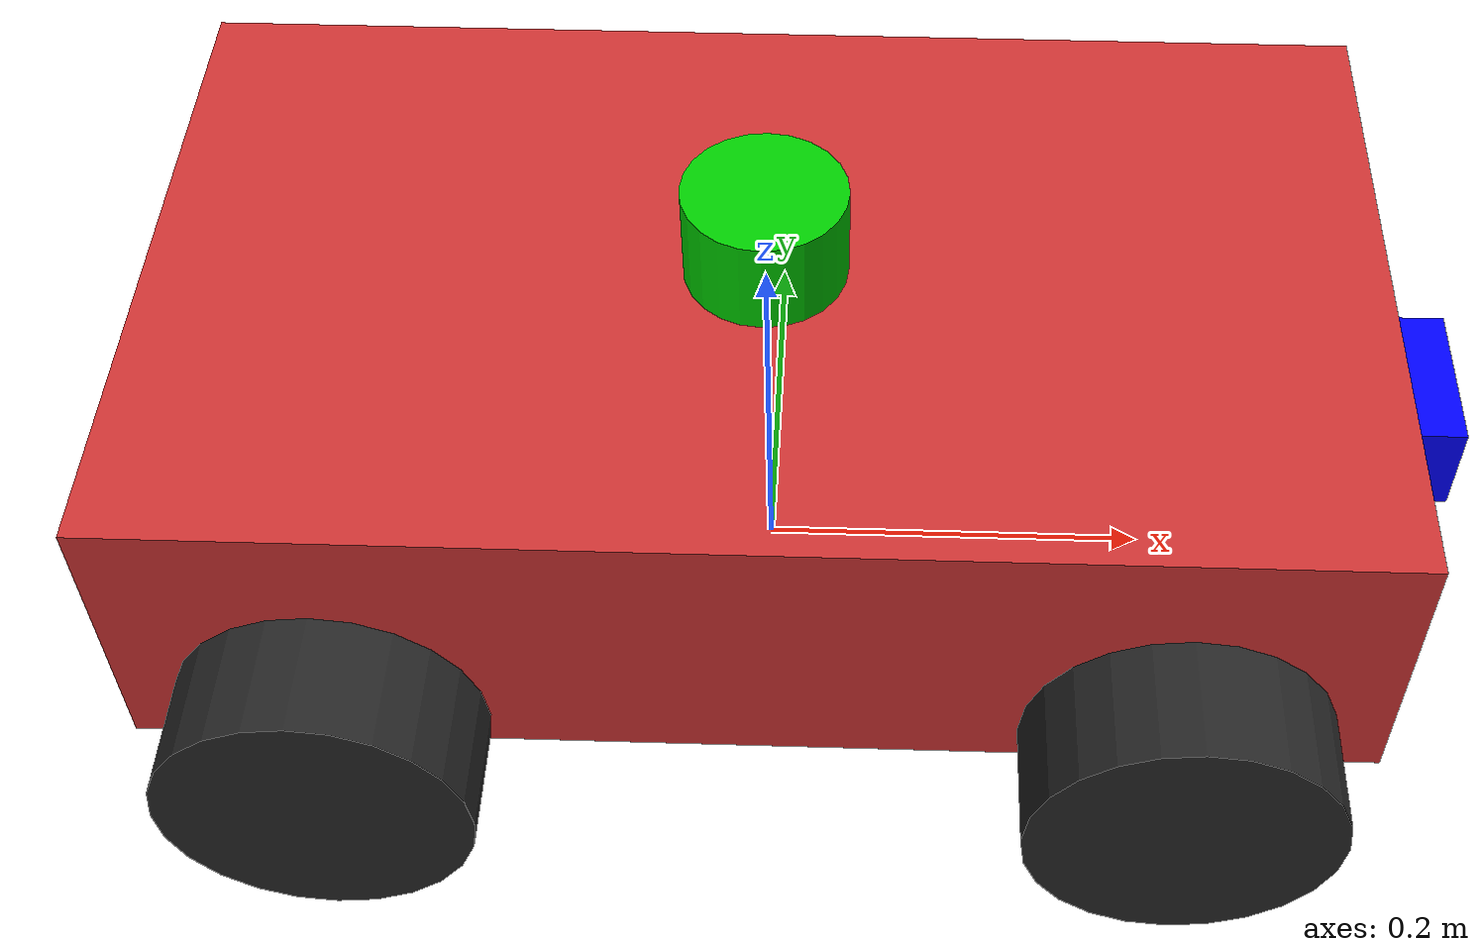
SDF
<?xml version="1.0" ?>
<sdf version="1.6">
  <model name="camera_robot">
    <!-- ==================== 底盘 ==================== -->
    <link name="base_link">
      <pose>0 0 0.13 0 0 0</pose>

      <inertial>
        <mass>15.0</mass>
        <inertia>
          <ixx>0.15</ixx><ixy>0</ixy><ixz>0</ixz>
          <iyy>0.20</iyy><iyz>0</iyz>
          <izz>0.25</izz>
        </inertia>
      </inertial>

      <collision name="collision">
        <geometry>
          <box><size>0.6 0.35 0.15</size></box>
        </geometry>
      </collision>

      <visual name="visual">
        <geometry>
          <box><size>0.6 0.35 0.15</size></box>
        </geometry>
        <material>
          <ambient>0.8 0.2 0.2 1</ambient>
          <diffuse>0.8 0.2 0.2 1</diffuse>
          <specular>0.1 0.1 0.1 1</specular>
        </material>
      </visual>
    </link>

    <!-- ==================== 四个车轮 ==================== -->

    <!-- 前左轮 (FL) -->
    <link name="front_left_wheel">
      <pose>0.2 0.205 0.075 1.5708 0 0</pose>
      <inertial>
        <mass>1.5</mass>
        <inertia>
          <ixx>0.012</ixx><ixy>0</ixy><ixz>0</ixz>
          <iyy>0.012</iyy><iyz>0</iyz>
          <izz>0.02</izz>
        </inertia>
      </inertial>
      <collision name="collision">
        <geometry>
          <cylinder><radius>0.075</radius><length>0.06</length></cylinder>
        </geometry>
        <surface>
          <friction>
            <ode><mu>1.0</mu><mu2>1.0</mu2></ode>
          </friction>
        </surface>
      </collision>
      <visual name="visual">
        <geometry>
          <cylinder><radius>0.075</radius><length>0.06</length></cylinder>
        </geometry>
        <material>
          <ambient>0.1 0.1 0.1 1</ambient>
          <diffuse>0.15 0.15 0.15 1</diffuse>
          <specular>0.5 0.5 0.5 1</specular>
        </material>
      </visual>
    </link>

    <!-- 前右轮 (FR) -->
    <link name="front_right_wheel">
      <pose>0.2 -0.205 0.075 1.5708 0 0</pose>
      <inertial>
        <mass>1.5</mass>
        <inertia>
          <ixx>0.012</ixx><ixy>0</ixy><ixz>0</ixz>
          <iyy>0.012</iyy><iyz>0</iyz>
          <izz>0.02</izz>
        </inertia>
      </inertial>
      <collision name="collision">
        <geometry>
          <cylinder><radius>0.075</radius><length>0.06</length></cylinder>
        </geometry>
        <surface>
          <friction>
            <ode><mu>1.0</mu><mu2>1.0</mu2></ode>
          </friction>
        </surface>
      </collision>
      <visual name="visual">
        <geometry>
          <cylinder><radius>0.075</radius><length>0.06</length></cylinder>
        </geometry>
        <material>
          <ambient>0.1 0.1 0.1 1</ambient>
          <diffuse>0.15 0.15 0.15 1</diffuse>
          <specular>0.5 0.5 0.5 1</specular>
        </material>
      </visual>
    </link>

    <!-- 后左轮 (RL) -->
    <link name="rear_left_wheel">
      <pose>-0.2 0.205 0.075 1.5708 0 0</pose>
      <inertial>
        <mass>1.5</mass>
        <inertia>
          <ixx>0.012</ixx><ixy>0</ixy><ixz>0</ixz>
          <iyy>0.012</iyy><iyz>0</iyz>
          <izz>0.02</izz>
        </inertia>
      </inertial>
      <collision name="collision">
        <geometry>
          <cylinder><radius>0.075</radius><length>0.06</length></cylinder>
        </geometry>
        <surface>
          <friction>
            <ode><mu>1.0</mu><mu2>1.0</mu2></ode>
          </friction>
        </surface>
      </collision>
      <visual name="visual">
        <geometry>
          <cylinder><radius>0.075</radius><length>0.06</length></cylinder>
        </geometry>
        <material>
          <ambient>0.1 0.1 0.1 1</ambient>
          <diffuse>0.15 0.15 0.15 1</diffuse>
          <specular>0.5 0.5 0.5 1</specular>
        </material>
      </visual>
    </link>

    <!-- 后右轮 (RR) -->
    <link name="rear_right_wheel">
      <pose>-0.2 -0.205 0.075 1.5708 0 0</pose>
      <inertial>
        <mass>1.5</mass>
        <inertia>
          <ixx>0.012</ixx><ixy>0</ixy><ixz>0</ixz>
          <iyy>0.012</iyy><iyz>0</iyz>
          <izz>0.02</izz>
        </inertia>
      </inertial>
      <collision name="collision">
        <geometry>
          <cylinder><radius>0.075</radius><length>0.06</length></cylinder>
        </geometry>
        <surface>
          <friction>
            <ode><mu>1.0</mu><mu2>1.0</mu2></ode>
          </friction>
        </surface>
      </collision>
      <visual name="visual">
        <geometry>
          <cylinder><radius>0.075</radius><length>0.06</length></cylinder>
        </geometry>
        <material>
          <ambient>0.1 0.1 0.1 1</ambient>
          <diffuse>0.15 0.15 0.15 1</diffuse>
          <specular>0.5 0.5 0.5 1</specular>
        </material>
      </visual>
    </link>

    <!-- ==================== RGBD 深度相机 ==================== -->
    <link name="camera_link">
      <pose>0.32 0 0.114 0 0 0</pose>
      <inertial>
        <mass>0.2</mass>
        <inertia>
          <ixx>0.001</ixx><ixy>0</ixy><ixz>0</ixz>
          <iyy>0.001</iyy><iyz>0</iyz>
          <izz>0.001</izz>
        </inertia>
      </inertial>

      <sensor name="rgbd_camera" type="depth">
        <camera name="camera">
          <horizontal_fov>1.047</horizontal_fov>
          <image>
            <width>640</width>
            <height>480</height>
            <format>R8G8B8</format>
          </image>
          <clip>
            <near>0.1</near>
            <far>10.0</far>
          </clip>
        </camera>
        <always_on>true</always_on>
        <update_rate>30</update_rate>
        <plugin name="camera_controller" filename="libgazebo_ros_camera.so">
          <ros>
            <namespace>/camera_robot</namespace>
            <argument>image_raw:=rgb/image_raw</argument>
            <argument>camera_info:=rgb/camera_info</argument>
            <argument>depth/image_raw:=depth/image_raw</argument>
            <argument>depth/camera_info:=depth/camera_info</argument>
            <argument>points:=depth/points</argument>
          </ros>
          <camera_name>rgbd_camera</camera_name>
          <frame_name>camera_link</frame_name>
          <hack_baseline>0.07</hack_baseline>
          <min_depth>0.1</min_depth>
          <max_depth>10.0</max_depth>
        </plugin>
      </sensor>

      <visual name="visual">
        <geometry>
          <box><size>0.05 0.08 0.05</size></box>
        </geometry>
        <material>
          <ambient>0 0 1 1</ambient>
          <diffuse>0 0 1 1</diffuse>
        </material>
      </visual>
    </link>

    <!-- ==================== 激光雷达 ==================== -->
    <link name="lidar_link">
      <!-- 底盘顶面 z=0.13+0.075=0.205, 再加上雷达高度 0.025 -->
      <pose>0 0 0.23 0 0 0</pose>
      <inertial>
        <mass>0.1</mass>
        <inertia>
          <ixx>0.0001</ixx><ixy>0</ixy><ixz>0</ixz>
          <iyy>0.0001</iyy><iyz>0</iyz>
          <izz>0.0001</izz>
        </inertia>
      </inertial>

      <collision name="collision">
        <geometry>
          <cylinder><radius>0.04</radius><length>0.05</length></cylinder>
        </geometry>
      </collision>
      <visual name="visual">
        <geometry>
          <cylinder><radius>0.04</radius><length>0.05</length></cylinder>
        </geometry>
        <material>
          <ambient>0.0 0.8 0.0 1</ambient>
          <diffuse>0.0 0.8 0.0 1</diffuse>
        </material>
      </visual>

      <sensor name="lidar" type="ray">
        <always_on>true</always_on>
        <update_rate>10</update_rate>
        <visualize>true</visualize>
        <ray>
          <scan>
            <horizontal>
              <samples>360</samples>
              <resolution>1</resolution>
              <min_angle>-3.14159</min_angle>
              <max_angle>3.14159</max_angle>
            </horizontal>
          </scan>
          <range>
            <min>0.15</min>
            <max>12.0</max>
            <resolution>0.01</resolution>
          </range>
          <noise>
            <type>gaussian</type>
            <mean>0.0</mean>
            <stddev>0.01</stddev>
          </noise>
        </ray>
        <plugin name="lidar_controller" filename="libgazebo_ros_ray_sensor.so">
          <ros>
            <namespace>/camera_robot</namespace>
            <argument>~/out:=scan</argument>
          </ros>
          <output_type>sensor_msgs/LaserScan</output_type>
          <frame_name>lidar_link</frame_name>
        </plugin>
      </sensor>
    </link>

    <!-- ==================== 关节 ==================== -->

    <!-- 前左轮关节 -->
    <joint name="front_left_wheel_joint" type="revolute">
      <parent>base_link</parent>
      <child>front_left_wheel</child>
      <axis>
        <xyz>0 0 -1</xyz>
        <limit><effort>10</effort><velocity>100</velocity></limit>
        <dynamics><damping>0.1</damping><friction>0.1</friction></dynamics>
      </axis>
    </joint>

    <!-- 前右轮关节 -->
    <joint name="front_right_wheel_joint" type="revolute">
      <parent>base_link</parent>
      <child>front_right_wheel</child>
      <axis>
        <xyz>0 0 -1</xyz>
        <limit><effort>10</effort><velocity>100</velocity></limit>
        <dynamics><damping>0.1</damping><friction>0.1</friction></dynamics>
      </axis>
    </joint>

    <!-- 后左轮关节 -->
    <joint name="rear_left_wheel_joint" type="revolute">
      <parent>base_link</parent>
      <child>rear_left_wheel</child>
      <axis>
        <xyz>0 0 -1</xyz>
        <limit><effort>10</effort><velocity>100</velocity></limit>
        <dynamics><damping>0.1</damping><friction>0.1</friction></dynamics>
      </axis>
    </joint>

    <!-- 后右轮关节 -->
    <joint name="rear_right_wheel_joint" type="revolute">
      <parent>base_link</parent>
      <child>rear_right_wheel</child>
      <axis>
        <xyz>0 0 -1</xyz>
        <limit><effort>10</effort><velocity>100</velocity></limit>
        <dynamics><damping>0.1</damping><friction>0.1</friction></dynamics>
      </axis>
    </joint>

    <!-- 深度相机关节 -->
    <joint name="camera_joint" type="fixed">
      <parent>base_link</parent>
      <child>camera_link</child>
    </joint>

    <!-- 激光雷达关节 -->
    <joint name="lidar_joint" type="fixed">
      <parent>base_link</parent>
      <child>lidar_link</child>
    </joint>

    <!-- ==================== 差速驱动插件（四轮：左前+左后 / 右前+右后） ==================== -->
    <!--
      libgazebo_ros_diff_drive 支持多轮，通过分别设置两对轮子实现四轮差速。
      左侧驱动轮：front_left + rear_left
      右侧驱动轮：front_right + rear_right
    -->
    <plugin name="diff_drive" filename="libgazebo_ros_diff_drive.so">
      <ros>
        <namespace>/camera_robot</namespace>
      </ros>

      <!-- 四轮差速：必须声明轮对数量 -->
      <num_wheel_pairs>2</num_wheel_pairs>

      <!-- 左侧：前左 + 后左 -->
      <left_joint>front_left_wheel_joint</left_joint>
      <left_joint>rear_left_wheel_joint</left_joint>

      <!-- 右侧：前右 + 后右 -->
      <right_joint>front_right_wheel_joint</right_joint>
      <right_joint>rear_right_wheel_joint</right_joint>

      <wheel_separation>0.41</wheel_separation>
      <wheel_diameter>0.15</wheel_diameter>
      <max_wheel_torque>15</max_wheel_torque>
      <max_wheel_acceleration>5.0</max_wheel_acceleration>

      <command_topic>cmd_vel</command_topic>
      <odometry_topic>odom</odometry_topic>
      <odometry_frame>odom</odometry_frame>
      <robot_base_frame>base_link</robot_base_frame>

      <publish_odom>true</publish_odom>
      <publish_odom_tf>true</publish_odom_tf>
      <publish_wheel_tf>true</publish_wheel_tf>
    </plugin>

    <plugin name="pallet_pose_ground_truth" filename="libgazebo_ros_p3d.so">
      <ros>
        <namespace>/ground_truth</namespace>
        <remapping>odom:=pallet_pose</remapping>
      </ros>
      <body_name>base_link</body_name>
      <frame_name>camera_link</frame_name>  <!-- 相对于相机坐标系 -->
      <update_rate>30.0</update_rate>
    </plugin>

  </model>
</sdf>
